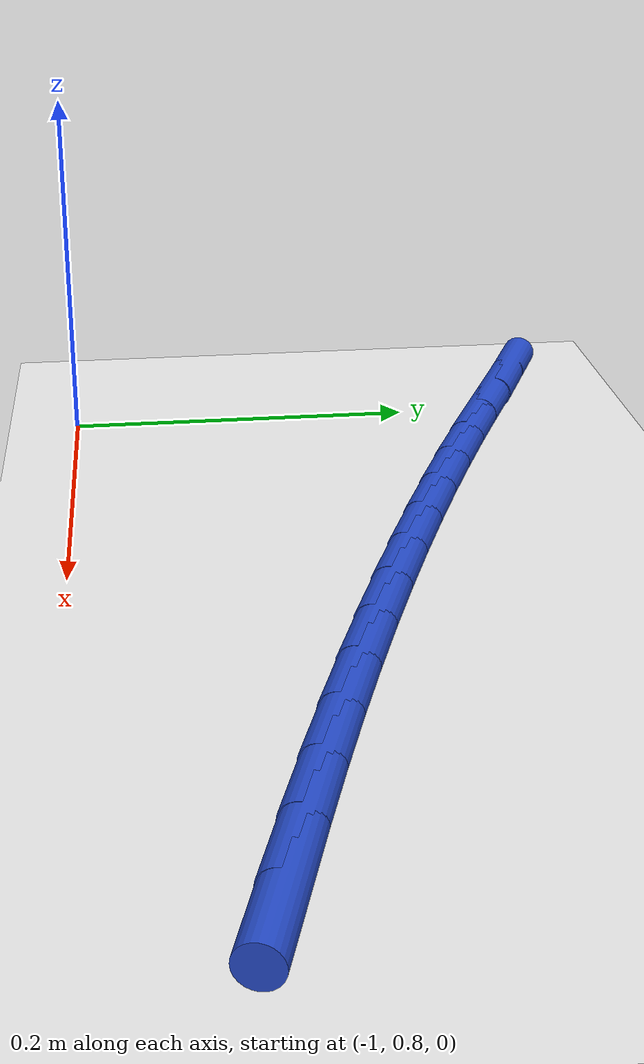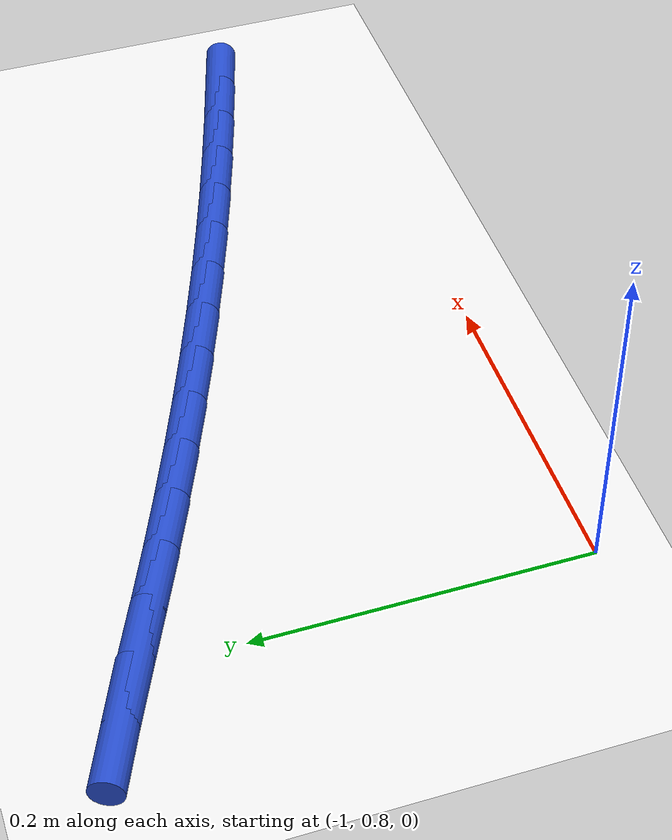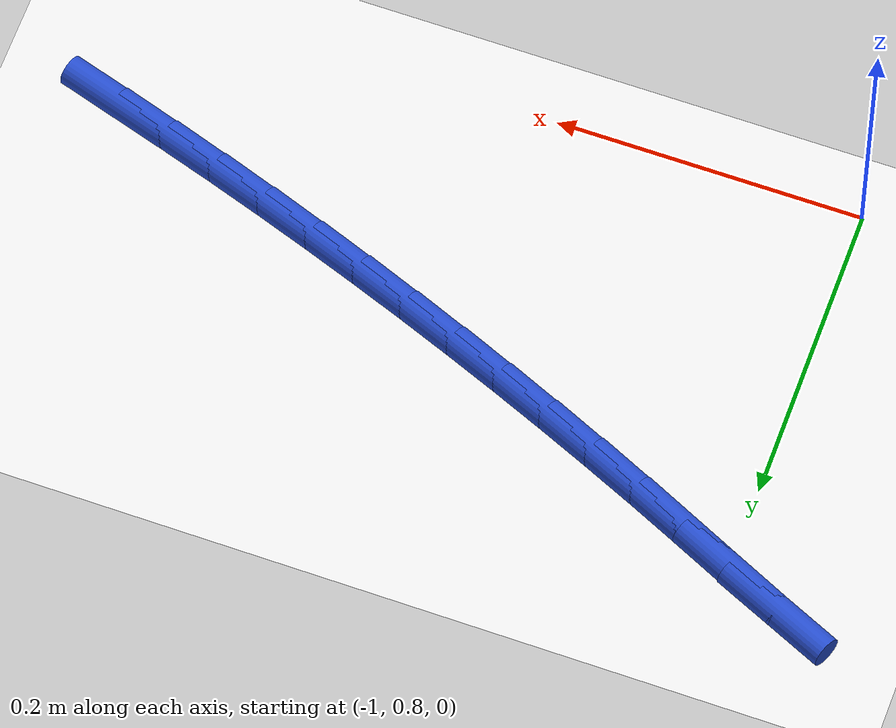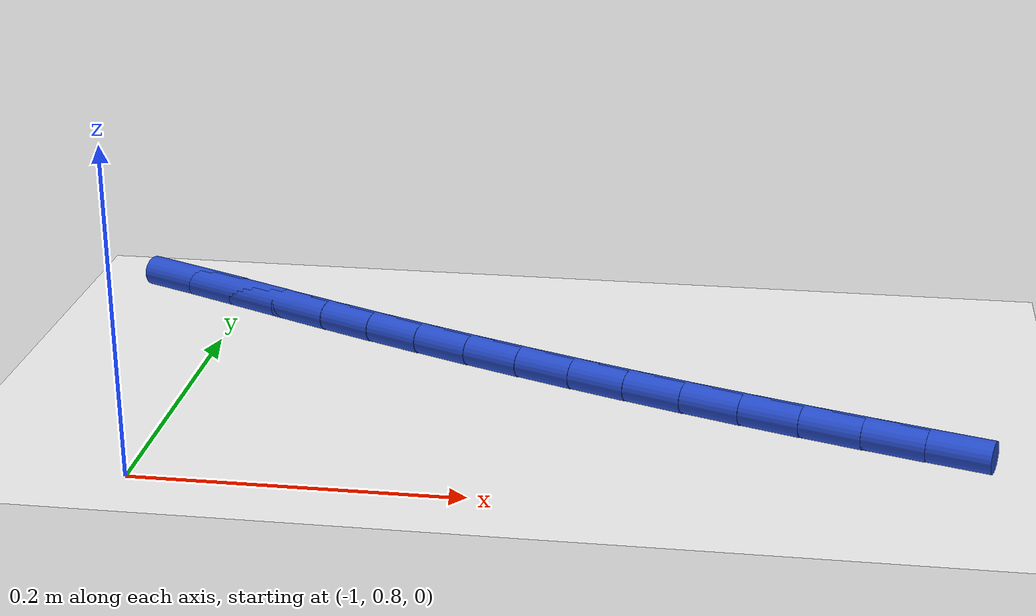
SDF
<sdf version="1.6">
 <world name="default">
  <model name="ground_plane">
   <static>1</static>
   <link name="link">
    <collision name="collision">
     <geometry><plane><normal>0 0 1</normal><size>100 100</size></plane></geometry>
     <surface><friction><ode><mu>100</mu><mu2>50</mu2></ode></friction></surface>
    </collision>
    <visual name="visual">
     <cast_shadows>0</cast_shadows>
     <geometry><plane><normal>0 0 1</normal><size>100 100</size></plane></geometry>
     <material>
      <script><uri>file://media/materials/scripts/gazebo.material</uri><name>Gazebo/WhiteGlow</name></script>
     </material>
    </visual>
   </link>
  </model>
  <model name="line">
   <link name="link_29">
    <pose>-0.5416227749209156 0.8838783658394096 0.01 0 1.57 -0.29500936436673536</pose>
    <collision name="collision">
     <geometry><cylinder><radius>0.01</radius><length>0.08</length></cylinder></geometry>
    </collision>
    <visual name="visual">
     <material>
      <script><name>Gazebo/Blue</name><uri>file://media/materials/scripts/gazebo.material</uri></script>
     </material>
     <geometry><cylinder><radius>0.01</radius><length>0.08</length></cylinder></geometry>
    </visual>
   </link>
   <link name="link_30">
    <pose>-0.5786540419581925 0.895131295764723 0.01 0 1.57 -0.30557703463894126</pose>
    <collision name="collision">
     <geometry><cylinder><radius>0.01</radius><length>0.08</length></cylinder></geometry>
    </collision>
    <visual name="visual">
     <material>
      <script><name>Gazebo/Blue</name><uri>file://media/materials/scripts/gazebo.material</uri></script>
     </material>
     <geometry><cylinder><radius>0.01</radius><length>0.08</length></cylinder></geometry>
    </visual>
   </link>
   <link name="link_31">
    <pose>-0.6154170284043116 0.9067284580790453 0.01 0 1.57 -0.317720188088383</pose>
    <collision name="collision">
     <geometry><cylinder><radius>0.01</radius><length>0.08</length></cylinder></geometry>
    </collision>
    <visual name="visual">
     <material>
      <script><name>Gazebo/Blue</name><uri>file://media/materials/scripts/gazebo.material</uri></script>
     </material>
     <geometry><cylinder><radius>0.01</radius><length>0.08</length></cylinder></geometry>
    </visual>
   </link>
   <link name="link_32">
    <pose>-0.6518871339176554 0.9187220582817824 0.01 0 1.57 -0.32990864279539034</pose>
    <collision name="collision">
     <geometry><cylinder><radius>0.01</radius><length>0.08</length></cylinder></geometry>
    </collision>
    <visual name="visual">
     <material>
      <script><name>Gazebo/Blue</name><uri>file://media/materials/scripts/gazebo.material</uri></script>
     </material>
     <geometry><cylinder><radius>0.01</radius><length>0.08</length></cylinder></geometry>
    </visual>
   </link>
   <link name="link_33">
    <pose>-0.6880764637261672 0.9311141097509332 0.01 0 1.57 -0.3421276375032239</pose>
    <collision name="collision">
     <geometry><cylinder><radius>0.01</radius><length>0.08</length></cylinder></geometry>
    </collision>
    <visual name="visual">
     <material>
      <script><name>Gazebo/Blue</name><uri>file://media/materials/scripts/gazebo.material</uri></script>
     </material>
     <geometry><cylinder><radius>0.01</radius><length>0.08</length></cylinder></geometry>
    </visual>
   </link>
   <link name="link_34">
    <pose>-0.7239971230577906 0.9439066258644973 0.01 0 1.57 -0.35436214498259655</pose>
    <collision name="collision">
     <geometry><cylinder><radius>0.01</radius><length>0.08</length></cylinder></geometry>
    </collision>
    <visual name="visual">
     <material>
      <script><name>Gazebo/Blue</name><uri>file://media/materials/scripts/gazebo.material</uri></script>
     </material>
     <geometry><cylinder><radius>0.01</radius><length>0.08</length></cylinder></geometry>
    </visual>
   </link>
   <link name="link_35">
    <pose>-0.7596612171404693 0.9571016200004739 0.01 0 1.57 -0.3665969452555445</pose>
    <collision name="collision">
     <geometry><cylinder><radius>0.01</radius><length>0.08</length></cylinder></geometry>
    </collision>
    <visual name="visual">
     <material>
      <script><name>Gazebo/Blue</name><uri>file://media/materials/scripts/gazebo.material</uri></script>
     </material>
     <geometry><cylinder><radius>0.01</radius><length>0.08</length></cylinder></geometry>
    </visual>
   </link>
   <link name="link_36">
    <pose>-0.7950808512021468 0.9707011055368625 0.01 0 1.57 -0.37881670132085987</pose>
    <collision name="collision">
     <geometry><cylinder><radius>0.01</radius><length>0.08</length></cylinder></geometry>
    </collision>
    <visual name="visual">
     <material>
      <script><name>Gazebo/Blue</name><uri>file://media/materials/scripts/gazebo.material</uri></script>
     </material>
     <geometry><cylinder><radius>0.01</radius><length>0.08</length></cylinder></geometry>
    </visual>
   </link>
   <link name="link_37">
    <pose>-0.8302681304707665 0.9847070958516626 0.01 0 1.57 -0.39100603648781923</pose>
    <collision name="collision">
     <geometry><cylinder><radius>0.01</radius><length>0.08</length></cylinder></geometry>
    </collision>
    <visual name="visual">
     <material>
      <script><name>Gazebo/Blue</name><uri>file://media/materials/scripts/gazebo.material</uri></script>
     </material>
     <geometry><cylinder><radius>0.01</radius><length>0.08</length></cylinder></geometry>
    </visual>
   </link>
   <link name="link_38">
    <pose>-0.8652351601742723 0.9991216043228734 0.01 0 1.57 -0.40314961238867675</pose>
    <collision name="collision">
     <geometry><cylinder><radius>0.01</radius><length>0.08</length></cylinder></geometry>
    </collision>
    <visual name="visual">
     <material>
      <script><name>Gazebo/Blue</name><uri>file://media/materials/scripts/gazebo.material</uri></script>
     </material>
     <geometry><cylinder><radius>0.01</radius><length>0.08</length></cylinder></geometry>
    </visual>
   </link>
   <link name="link_39">
    <pose>-0.8999940455406075 1.0139466443284941 0.01 0 1.57 -0.41523220672429156</pose>
    <collision name="collision">
     <geometry><cylinder><radius>0.01</radius><length>0.08</length></cylinder></geometry>
    </collision>
    <visual name="visual">
     <material>
      <script><name>Gazebo/Blue</name><uri>file://media/materials/scripts/gazebo.material</uri></script>
     </material>
     <geometry><cylinder><radius>0.01</radius><length>0.08</length></cylinder></geometry>
    </visual>
   </link>
   <link name="link_40">
    <pose>-0.934556891797716 1.0291842292465248 0.01 0 1.57 -0.42723747577117693</pose>
    <collision name="collision">
     <geometry><cylinder><radius>0.01</radius><length>0.08</length></cylinder></geometry>
    </collision>
    <visual name="visual">
     <material>
      <script><name>Gazebo/Blue</name><uri>file://media/materials/scripts/gazebo.material</uri></script>
     </material>
     <geometry><cylinder><radius>0.01</radius><length>0.08</length></cylinder></geometry>
    </visual>
   </link>
   <link name="link_41">
    <pose>-0.968935824949788 1.0448363273750696 0.01 0 1.57 -0.4363674215908573</pose>
    <collision name="collision">
     <geometry><cylinder><radius>0.01</radius><length>0.08</length></cylinder></geometry>
    </collision>
    <visual name="visual">
     <material>
      <script><name>Gazebo/Blue</name><uri>file://media/materials/scripts/gazebo.material</uri></script>
     </material>
     <geometry><cylinder><radius>0.01</radius><length>0.08</length></cylinder></geometry>
    </visual>
   </link>
   <link name="link_42">
    <pose>-1.0031869989140767 1.0608093761071757 0.01 0 1.57 -0.4339645834042764</pose>
    <collision name="collision">
     <geometry><cylinder><radius>0.01</radius><length>0.08</length></cylinder></geometry>
    </collision>
    <visual name="visual">
     <material>
      <script><name>Gazebo/Blue</name><uri>file://media/materials/scripts/gazebo.material</uri></script>
     </material>
     <geometry><cylinder><radius>0.01</radius><length>0.08</length></cylinder></geometry>
    </visual>
   </link>
   <link name="link_43">
    <pose>-1.0375035331286517 1.0767126277263728 0.01 0 1.57 -0.4183837993525069</pose>
    <collision name="collision">
     <geometry><cylinder><radius>0.01</radius><length>0.08</length></cylinder></geometry>
    </collision>
    <visual name="visual">
     <material>
      <script><name>Gazebo/Blue</name><uri>file://media/materials/scripts/gazebo.material</uri></script>
     </material>
     <geometry><cylinder><radius>0.01</radius><length>0.08</length></cylinder></geometry>
    </visual>
   </link>
  </model>
 </world>
</sdf>
